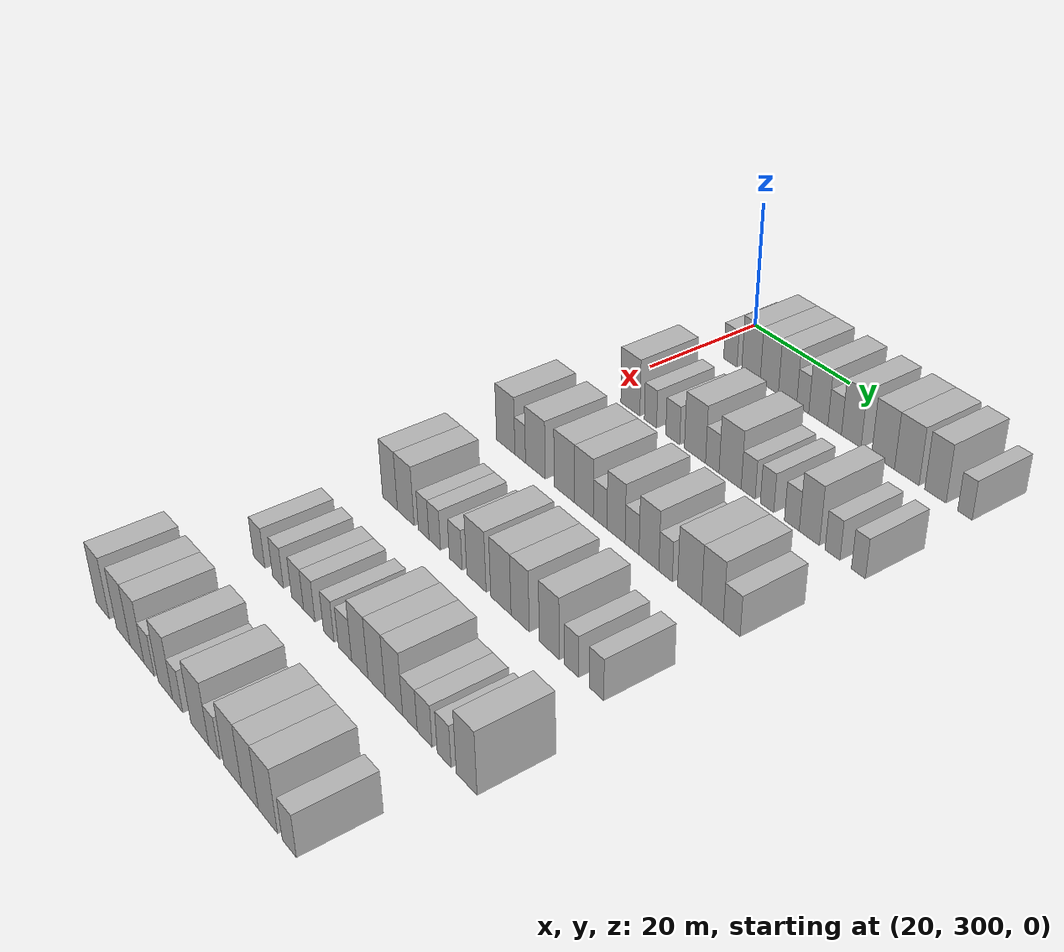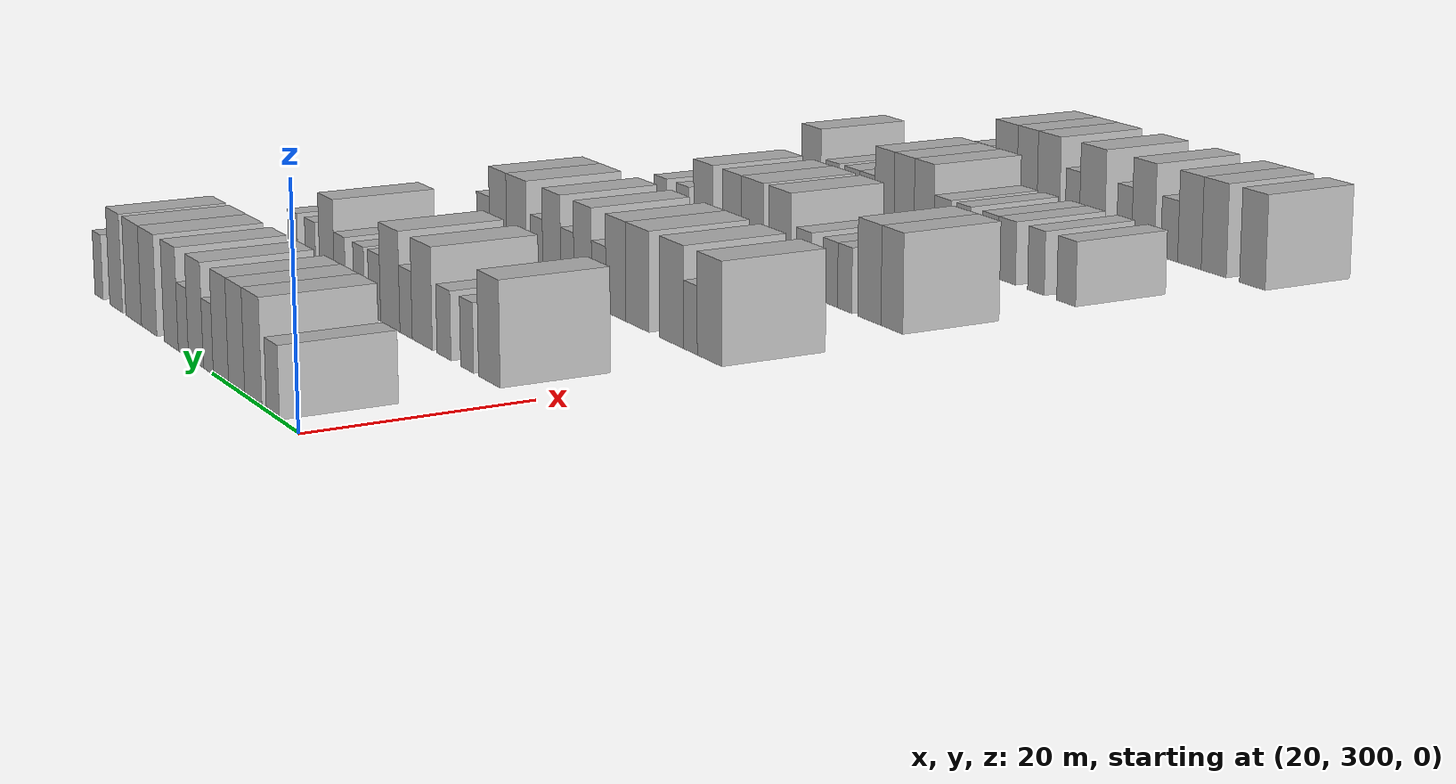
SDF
<sdf version="1.6">
 <world name="default">
  <model name="building_176">
   <static>1</static>
   <pose>25.0000 305.8045 0 0.000000 0.000000 0.000000</pose>
   <link name="link">
    <pose>0 0 3.00 0 0 0</pose>
    <collision name="collision"><geometry><box><size>10.0000 2.9449 6.0000</size></box></geometry></collision>
    <visual name="visual">
     <cast_shadows>0</cast_shadows>
     <geometry><box><size>10.0000 2.9449 6.0000</size></box></geometry>
     <material>
      <script>
       <uri>model://HANNAS_wall/materials/scripts</uri>
       <uri>model://HANNAS_wall/materials/textures</uri>
       <name>vrc/HANNAS_wall</name>
      </script>
     </material>
    </visual>
   </link>
  </model>
  <model name="building_177">
   <static>1</static>
   <pose>25.0000 310.2617 0 0.000000 0.000000 0.000000</pose>
   <link name="link">
    <pose>0 0 4.50 0 0 0</pose>
    <collision name="collision"><geometry><box><size>10.0000 3.9695 9.0000</size></box></geometry></collision>
    <visual name="visual">
     <cast_shadows>0</cast_shadows>
     <geometry><box><size>10.0000 3.9695 9.0000</size></box></geometry>
     <material>
      <script>
       <uri>model://HANNAS_wall/materials/scripts</uri>
       <uri>model://HANNAS_wall/materials/textures</uri>
       <name>vrc/HANNAS_wall</name>
      </script>
     </material>
    </visual>
   </link>
  </model>
  <model name="building_178">
   <static>1</static>
   <pose>25.0000 314.1669 0 0.000000 0.000000 0.000000</pose>
   <link name="link">
    <pose>0 0 4.50 0 0 0</pose>
    <collision name="collision"><geometry><box><size>10.0000 3.8408 9.0000</size></box></geometry></collision>
    <visual name="visual">
     <cast_shadows>0</cast_shadows>
     <geometry><box><size>10.0000 3.8408 9.0000</size></box></geometry>
     <material>
      <script>
       <uri>model://HANNAS_wall/materials/scripts</uri>
       <uri>model://HANNAS_wall/materials/textures</uri>
       <name>vrc/HANNAS_wall</name>
      </script>
     </material>
    </visual>
   </link>
  </model>
  <model name="building_179">
   <static>1</static>
   <pose>25.0000 317.9607 0 0.000000 0.000000 0.000000</pose>
   <link name="link">
    <pose>0 0 4.50 0 0 0</pose>
    <collision name="collision"><geometry><box><size>10.0000 3.7470 9.0000</size></box></geometry></collision>
    <visual name="visual">
     <cast_shadows>0</cast_shadows>
     <geometry><box><size>10.0000 3.7470 9.0000</size></box></geometry>
     <material>
      <script>
       <uri>model://HANNAS_wall/materials/scripts</uri>
       <uri>model://HANNAS_wall/materials/textures</uri>
       <name>vrc/HANNAS_wall</name>
      </script>
     </material>
    </visual>
   </link>
  </model>
  <model name="building_180">
   <static>1</static>
   <pose>25.0000 321.0711 0 0.000000 0.000000 0.000000</pose>
   <link name="link">
    <pose>0 0 3.00 0 0 0</pose>
    <collision name="collision"><geometry><box><size>10.0000 2.4738 6.0000</size></box></geometry></collision>
    <visual name="visual">
     <cast_shadows>0</cast_shadows>
     <geometry><box><size>10.0000 2.4738 6.0000</size></box></geometry>
     <material>
      <script>
       <uri>model://HANNAS_wall/materials/scripts</uri>
       <uri>model://HANNAS_wall/materials/textures</uri>
       <name>vrc/HANNAS_wall</name>
      </script>
     </material>
    </visual>
   </link>
  </model>
  <model name="building_181">
   <static>1</static>
   <pose>25.0000 324.2122 0 0.000000 0.000000 0.000000</pose>
   <link name="link">
    <pose>0 0 4.50 0 0 0</pose>
    <collision name="collision"><geometry><box><size>10.0000 3.8084 9.0000</size></box></geometry></collision>
    <visual name="visual">
     <cast_shadows>0</cast_shadows>
     <geometry><box><size>10.0000 3.8084 9.0000</size></box></geometry>
     <material>
      <script>
       <uri>model://HANNAS_wall/materials/scripts</uri>
       <uri>model://HANNAS_wall/materials/textures</uri>
       <name>vrc/HANNAS_wall</name>
      </script>
     </material>
    </visual>
   </link>
  </model>
  <model name="building_182">
   <static>1</static>
   <pose>25.0000 327.4393 0 0.000000 0.000000 0.000000</pose>
   <link name="link">
    <pose>0 0 3.00 0 0 0</pose>
    <collision name="collision"><geometry><box><size>10.0000 2.6457 6.0000</size></box></geometry></collision>
    <visual name="visual">
     <cast_shadows>0</cast_shadows>
     <geometry><box><size>10.0000 2.6457 6.0000</size></box></geometry>
     <material>
      <script>
       <uri>model://HANNAS_wall/materials/scripts</uri>
       <uri>model://HANNAS_wall/materials/textures</uri>
       <name>vrc/HANNAS_wall</name>
      </script>
     </material>
    </visual>
   </link>
  </model>
  <model name="building_183">
   <static>1</static>
   <pose>25.0000 330.6373 0 0.000000 0.000000 0.000000</pose>
   <link name="link">
    <pose>0 0 4.50 0 0 0</pose>
    <collision name="collision"><geometry><box><size>10.0000 3.7503 9.0000</size></box></geometry></collision>
    <visual name="visual">
     <cast_shadows>0</cast_shadows>
     <geometry><box><size>10.0000 3.7503 9.0000</size></box></geometry>
     <material>
      <script>
       <uri>model://HANNAS_wall/materials/scripts</uri>
       <uri>model://HANNAS_wall/materials/textures</uri>
       <name>vrc/HANNAS_wall</name>
      </script>
     </material>
    </visual>
   </link>
  </model>
  <model name="building_184">
   <static>1</static>
   <pose>25.0000 336.6296 0 0.000000 0.000000 0.000000</pose>
   <link name="link">
    <pose>0 0 4.50 0 0 0</pose>
    <collision name="collision"><geometry><box><size>10.0000 4.2343 9.0000</size></box></geometry></collision>
    <visual name="visual">
     <cast_shadows>0</cast_shadows>
     <geometry><box><size>10.0000 4.2343 9.0000</size></box></geometry>
     <material>
      <script>
       <uri>model://HANNAS_wall/materials/scripts</uri>
       <uri>model://HANNAS_wall/materials/textures</uri>
       <name>vrc/HANNAS_wall</name>
      </script>
     </material>
    </visual>
   </link>
  </model>
  <model name="building_185">
   <static>1</static>
   <pose>25.0000 340.9697 0 0.000000 0.000000 0.000000</pose>
   <link name="link">
    <pose>0 0 4.50 0 0 0</pose>
    <collision name="collision"><geometry><box><size>10.0000 4.4460 9.0000</size></box></geometry></collision>
    <visual name="visual">
     <cast_shadows>0</cast_shadows>
     <geometry><box><size>10.0000 4.4460 9.0000</size></box></geometry>
     <material>
      <script>
       <uri>model://HANNAS_wall/materials/scripts</uri>
       <uri>model://HANNAS_wall/materials/textures</uri>
       <name>vrc/HANNAS_wall</name>
      </script>
     </material>
    </visual>
   </link>
  </model>
  <model name="building_186">
   <static>1</static>
   <pose>25.0000 346.0613 0 0.000000 0.000000 0.000000</pose>
   <link name="link">
    <pose>0 0 4.50 0 0 0</pose>
    <collision name="collision"><geometry><box><size>10.0000 3.7371 9.0000</size></box></geometry></collision>
    <visual name="visual">
     <cast_shadows>0</cast_shadows>
     <geometry><box><size>10.0000 3.7371 9.0000</size></box></geometry>
     <material>
      <script>
       <uri>model://HANNAS_wall/materials/scripts</uri>
       <uri>model://HANNAS_wall/materials/textures</uri>
       <name>vrc/HANNAS_wall</name>
      </script>
     </material>
    </visual>
   </link>
  </model>
  <model name="building_187">
   <static>1</static>
   <pose>25.0000 351.1634 0 0.000000 0.000000 0.000000</pose>
   <link name="link">
    <pose>0 0 3.00 0 0 0</pose>
    <collision name="collision"><geometry><box><size>10.0000 2.4670 6.0000</size></box></geometry></collision>
    <visual name="visual">
     <cast_shadows>0</cast_shadows>
     <geometry><box><size>10.0000 2.4670 6.0000</size></box></geometry>
     <material>
      <script>
       <uri>model://HANNAS_wall/materials/scripts</uri>
       <uri>model://HANNAS_wall/materials/textures</uri>
       <name>vrc/HANNAS_wall</name>
      </script>
     </material>
    </visual>
   </link>
  </model>
  <model name="building_346">
   <static>1</static>
   <pose>44.0000 306.8379 0 0.000000 0.000000 0.000000</pose>
   <link name="link">
    <pose>0 0 4.50 0 0 0</pose>
    <collision name="collision"><geometry><box><size>10.0000 4.2614 9.0000</size></box></geometry></collision>
    <visual name="visual">
     <cast_shadows>0</cast_shadows>
     <geometry><box><size>10.0000 4.2614 9.0000</size></box></geometry>
     <material>
      <script>
       <uri>model://HANNAS_wall/materials/scripts</uri>
       <uri>model://HANNAS_wall/materials/textures</uri>
       <name>vrc/HANNAS_wall</name>
      </script>
     </material>
    </visual>
   </link>
  </model>
  <model name="building_347">
   <static>1</static>
   <pose>44.0000 311.2999 0 0.000000 0.000000 0.000000</pose>
   <link name="link">
    <pose>0 0 3.00 0 0 0</pose>
    <collision name="collision"><geometry><box><size>10.0000 2.6626 6.0000</size></box></geometry></collision>
    <visual name="visual">
     <cast_shadows>0</cast_shadows>
     <geometry><box><size>10.0000 2.6626 6.0000</size></box></geometry>
     <material>
      <script>
       <uri>model://HANNAS_wall/materials/scripts</uri>
       <uri>model://HANNAS_wall/materials/textures</uri>
       <name>vrc/HANNAS_wall</name>
      </script>
     </material>
    </visual>
   </link>
  </model>
  <model name="building_348">
   <static>1</static>
   <pose>44.0000 316.1091 0 0.000000 0.000000 0.000000</pose>
   <link name="link">
    <pose>0 0 3.00 0 0 0</pose>
    <collision name="collision"><geometry><box><size>10.0000 2.9559 6.0000</size></box></geometry></collision>
    <visual name="visual">
     <cast_shadows>0</cast_shadows>
     <geometry><box><size>10.0000 2.9559 6.0000</size></box></geometry>
     <material>
      <script>
       <uri>model://HANNAS_wall/materials/scripts</uri>
       <uri>model://HANNAS_wall/materials/textures</uri>
       <name>vrc/HANNAS_wall</name>
      </script>
     </material>
    </visual>
   </link>
  </model>
  <model name="building_349">
   <static>1</static>
   <pose>44.0000 320.7773 0 0.000000 0.000000 0.000000</pose>
   <link name="link">
    <pose>0 0 4.50 0 0 0</pose>
    <collision name="collision"><geometry><box><size>10.0000 4.3804 9.0000</size></box></geometry></collision>
    <visual name="visual">
     <cast_shadows>0</cast_shadows>
     <geometry><box><size>10.0000 4.3804 9.0000</size></box></geometry>
     <material>
      <script>
       <uri>model://HANNAS_wall/materials/scripts</uri>
       <uri>model://HANNAS_wall/materials/textures</uri>
       <name>vrc/HANNAS_wall</name>
      </script>
     </material>
    </visual>
   </link>
  </model>
  <model name="building_350">
   <static>1</static>
   <pose>44.0000 324.3385 0 0.000000 0.000000 0.000000</pose>
   <link name="link">
    <pose>0 0 3.00 0 0 0</pose>
    <collision name="collision"><geometry><box><size>10.0000 2.7422 6.0000</size></box></geometry></collision>
    <visual name="visual">
     <cast_shadows>0</cast_shadows>
     <geometry><box><size>10.0000 2.7422 6.0000</size></box></geometry>
     <material>
      <script>
       <uri>model://HANNAS_wall/materials/scripts</uri>
       <uri>model://HANNAS_wall/materials/textures</uri>
       <name>vrc/HANNAS_wall</name>
      </script>
     </material>
    </visual>
   </link>
  </model>
  <model name="building_351">
   <static>1</static>
   <pose>44.0000 327.9108 0 0.000000 0.000000 0.000000</pose>
   <link name="link">
    <pose>0 0 4.50 0 0 0</pose>
    <collision name="collision"><geometry><box><size>10.0000 4.4023 9.0000</size></box></geometry></collision>
    <visual name="visual">
     <cast_shadows>0</cast_shadows>
     <geometry><box><size>10.0000 4.4023 9.0000</size></box></geometry>
     <material>
      <script>
       <uri>model://HANNAS_wall/materials/scripts</uri>
       <uri>model://HANNAS_wall/materials/textures</uri>
       <name>vrc/HANNAS_wall</name>
      </script>
     </material>
    </visual>
   </link>
  </model>
  <model name="building_352">
   <static>1</static>
   <pose>44.0000 331.4718 0 0.000000 0.000000 0.000000</pose>
   <link name="link">
    <pose>0 0 3.00 0 0 0</pose>
    <collision name="collision"><geometry><box><size>10.0000 2.7199 6.0000</size></box></geometry></collision>
    <visual name="visual">
     <cast_shadows>0</cast_shadows>
     <geometry><box><size>10.0000 2.7199 6.0000</size></box></geometry>
     <material>
      <script>
       <uri>model://HANNAS_wall/materials/scripts</uri>
       <uri>model://HANNAS_wall/materials/textures</uri>
       <name>vrc/HANNAS_wall</name>
      </script>
     </material>
    </visual>
   </link>
  </model>
  <model name="building_353">
   <static>1</static>
   <pose>44.0000 335.1109 0 0.000000 0.000000 0.000000</pose>
   <link name="link">
    <pose>0 0 3.00 0 0 0</pose>
    <collision name="collision"><geometry><box><size>10.0000 2.5582 6.0000</size></box></geometry></collision>
    <visual name="visual">
     <cast_shadows>0</cast_shadows>
     <geometry><box><size>10.0000 2.5582 6.0000</size></box></geometry>
     <material>
      <script>
       <uri>model://HANNAS_wall/materials/scripts</uri>
       <uri>model://HANNAS_wall/materials/textures</uri>
       <name>vrc/HANNAS_wall</name>
      </script>
     </material>
    </visual>
   </link>
  </model>
  <model name="building_354">
   <static>1</static>
   <pose>44.0000 339.7574 0 0.000000 0.000000 0.000000</pose>
   <link name="link">
    <pose>0 0 3.00 0 0 0</pose>
    <collision name="collision"><geometry><box><size>10.0000 2.7348 6.0000</size></box></geometry></collision>
    <visual name="visual">
     <cast_shadows>0</cast_shadows>
     <geometry><box><size>10.0000 2.7348 6.0000</size></box></geometry>
     <material>
      <script>
       <uri>model://HANNAS_wall/materials/scripts</uri>
       <uri>model://HANNAS_wall/materials/textures</uri>
       <name>vrc/HANNAS_wall</name>
      </script>
     </material>
    </visual>
   </link>
  </model>
  <model name="building_355">
   <static>1</static>
   <pose>44.0000 342.9606 0 0.000000 0.000000 0.000000</pose>
   <link name="link">
    <pose>0 0 4.50 0 0 0</pose>
    <collision name="collision"><geometry><box><size>10.0000 3.6716 9.0000</size></box></geometry></collision>
    <visual name="visual">
     <cast_shadows>0</cast_shadows>
     <geometry><box><size>10.0000 3.6716 9.0000</size></box></geometry>
     <material>
      <script>
       <uri>model://HANNAS_wall/materials/scripts</uri>
       <uri>model://HANNAS_wall/materials/textures</uri>
       <name>vrc/HANNAS_wall</name>
      </script>
     </material>
    </visual>
   </link>
  </model>
  <model name="building_356">
   <static>1</static>
   <pose>44.0000 347.1138 0 0.000000 0.000000 0.000000</pose>
   <link name="link">
    <pose>0 0 3.00 0 0 0</pose>
    <collision name="collision"><geometry><box><size>10.0000 2.6347 6.0000</size></box></geometry></collision>
    <visual name="visual">
     <cast_shadows>0</cast_shadows>
     <geometry><box><size>10.0000 2.6347 6.0000</size></box></geometry>
     <material>
      <script>
       <uri>model://HANNAS_wall/materials/scripts</uri>
       <uri>model://HANNAS_wall/materials/textures</uri>
       <name>vrc/HANNAS_wall</name>
      </script>
     </material>
    </visual>
   </link>
  </model>
  <model name="building_357">
   <static>1</static>
   <pose>44.0000 351.6318 0 0.000000 0.000000 0.000000</pose>
   <link name="link">
    <pose>0 0 3.00 0 0 0</pose>
    <collision name="collision"><geometry><box><size>10.0000 2.4013 6.0000</size></box></geometry></collision>
    <visual name="visual">
     <cast_shadows>0</cast_shadows>
     <geometry><box><size>10.0000 2.4013 6.0000</size></box></geometry>
     <material>
      <script>
       <uri>model://HANNAS_wall/materials/scripts</uri>
       <uri>model://HANNAS_wall/materials/textures</uri>
       <name>vrc/HANNAS_wall</name>
      </script>
     </material>
    </visual>
   </link>
  </model>
  <model name="building_511">
   <static>1</static>
   <pose>63.0000 304.2269 0 0.000000 0.000000 0.000000</pose>
   <link name="link">
    <pose>0 0 4.50 0 0 0</pose>
    <collision name="collision"><geometry><box><size>10.0000 4.3254 9.0000</size></box></geometry></collision>
    <visual name="visual">
     <cast_shadows>0</cast_shadows>
     <geometry><box><size>10.0000 4.3254 9.0000</size></box></geometry>
     <material>
      <script>
       <uri>model://HANNAS_wall/materials/scripts</uri>
       <uri>model://HANNAS_wall/materials/textures</uri>
       <name>vrc/HANNAS_wall</name>
      </script>
     </material>
    </visual>
   </link>
  </model>
  <model name="building_512">
   <static>1</static>
   <pose>63.0000 307.6133 0 0.000000 0.000000 0.000000</pose>
   <link name="link">
    <pose>0 0 3.00 0 0 0</pose>
    <collision name="collision"><geometry><box><size>10.0000 2.4474 6.0000</size></box></geometry></collision>
    <visual name="visual">
     <cast_shadows>0</cast_shadows>
     <geometry><box><size>10.0000 2.4474 6.0000</size></box></geometry>
     <material>
      <script>
       <uri>model://HANNAS_wall/materials/scripts</uri>
       <uri>model://HANNAS_wall/materials/textures</uri>
       <name>vrc/HANNAS_wall</name>
      </script>
     </material>
    </visual>
   </link>
  </model>
  <model name="building_513">
   <static>1</static>
   <pose>63.0000 311.0800 0 0.000000 0.000000 0.000000</pose>
   <link name="link">
    <pose>0 0 4.50 0 0 0</pose>
    <collision name="collision"><geometry><box><size>10.0000 4.4862 9.0000</size></box></geometry></collision>
    <visual name="visual">
     <cast_shadows>0</cast_shadows>
     <geometry><box><size>10.0000 4.4862 9.0000</size></box></geometry>
     <material>
      <script>
       <uri>model://HANNAS_wall/materials/scripts</uri>
       <uri>model://HANNAS_wall/materials/textures</uri>
       <name>vrc/HANNAS_wall</name>
      </script>
     </material>
    </visual>
   </link>
  </model>
  <model name="building_514">
   <static>1</static>
   <pose>63.0000 317.5495 0 0.000000 0.000000 0.000000</pose>
   <link name="link">
    <pose>0 0 4.50 0 0 0</pose>
    <collision name="collision"><geometry><box><size>10.0000 4.4528 9.0000</size></box></geometry></collision>
    <visual name="visual">
     <cast_shadows>0</cast_shadows>
     <geometry><box><size>10.0000 4.4528 9.0000</size></box></geometry>
     <material>
      <script>
       <uri>model://HANNAS_wall/materials/scripts</uri>
       <uri>model://HANNAS_wall/materials/textures</uri>
       <name>vrc/HANNAS_wall</name>
      </script>
     </material>
    </visual>
   </link>
  </model>
  <model name="building_515">
   <static>1</static>
   <pose>63.0000 321.7395 0 0.000000 0.000000 0.000000</pose>
   <link name="link">
    <pose>0 0 4.50 0 0 0</pose>
    <collision name="collision"><geometry><box><size>10.0000 3.9272 9.0000</size></box></geometry></collision>
    <visual name="visual">
     <cast_shadows>0</cast_shadows>
     <geometry><box><size>10.0000 3.9272 9.0000</size></box></geometry>
     <material>
      <script>
       <uri>model://HANNAS_wall/materials/scripts</uri>
       <uri>model://HANNAS_wall/materials/textures</uri>
       <name>vrc/HANNAS_wall</name>
      </script>
     </material>
    </visual>
   </link>
  </model>
  <model name="building_516">
   <static>1</static>
   <pose>63.0000 325.1432 0 0.000000 0.000000 0.000000</pose>
   <link name="link">
    <pose>0 0 3.00 0 0 0</pose>
    <collision name="collision"><geometry><box><size>10.0000 2.8802 6.0000</size></box></geometry></collision>
    <visual name="visual">
     <cast_shadows>0</cast_shadows>
     <geometry><box><size>10.0000 2.8802 6.0000</size></box></geometry>
     <material>
      <script>
       <uri>model://HANNAS_wall/materials/scripts</uri>
       <uri>model://HANNAS_wall/materials/textures</uri>
       <name>vrc/HANNAS_wall</name>
      </script>
     </material>
    </visual>
   </link>
  </model>
  <model name="building_517">
   <static>1</static>
   <pose>63.0000 328.4225 0 0.000000 0.000000 0.000000</pose>
   <link name="link">
    <pose>0 0 4.50 0 0 0</pose>
    <collision name="collision"><geometry><box><size>10.0000 3.6784 9.0000</size></box></geometry></collision>
    <visual name="visual">
     <cast_shadows>0</cast_shadows>
     <geometry><box><size>10.0000 3.6784 9.0000</size></box></geometry>
     <material>
      <script>
       <uri>model://HANNAS_wall/materials/scripts</uri>
       <uri>model://HANNAS_wall/materials/textures</uri>
       <name>vrc/HANNAS_wall</name>
      </script>
     </material>
    </visual>
   </link>
  </model>
  <model name="building_518">
   <static>1</static>
   <pose>63.0000 331.6562 0 0.000000 0.000000 0.000000</pose>
   <link name="link">
    <pose>0 0 3.00 0 0 0</pose>
    <collision name="collision"><geometry><box><size>10.0000 2.7889 6.0000</size></box></geometry></collision>
    <visual name="visual">
     <cast_shadows>0</cast_shadows>
     <geometry><box><size>10.0000 2.7889 6.0000</size></box></geometry>
     <material>
      <script>
       <uri>model://HANNAS_wall/materials/scripts</uri>
       <uri>model://HANNAS_wall/materials/textures</uri>
       <name>vrc/HANNAS_wall</name>
      </script>
     </material>
    </visual>
   </link>
  </model>
  <model name="building_519">
   <static>1</static>
   <pose>63.0000 334.9862 0 0.000000 0.000000 0.000000</pose>
   <link name="link">
    <pose>0 0 4.50 0 0 0</pose>
    <collision name="collision"><geometry><box><size>10.0000 3.8711 9.0000</size></box></geometry></collision>
    <visual name="visual">
     <cast_shadows>0</cast_shadows>
     <geometry><box><size>10.0000 3.8711 9.0000</size></box></geometry>
     <material>
      <script>
       <uri>model://HANNAS_wall/materials/scripts</uri>
       <uri>model://HANNAS_wall/materials/textures</uri>
       <name>vrc/HANNAS_wall</name>
      </script>
     </material>
    </visual>
   </link>
  </model>
  <model name="building_520">
   <static>1</static>
   <pose>63.0000 338.2127 0 0.000000 0.000000 0.000000</pose>
   <link name="link">
    <pose>0 0 3.00 0 0 0</pose>
    <collision name="collision"><geometry><box><size>10.0000 2.5819 6.0000</size></box></geometry></collision>
    <visual name="visual">
     <cast_shadows>0</cast_shadows>
     <geometry><box><size>10.0000 2.5819 6.0000</size></box></geometry>
     <material>
      <script>
       <uri>model://HANNAS_wall/materials/scripts</uri>
       <uri>model://HANNAS_wall/materials/textures</uri>
       <name>vrc/HANNAS_wall</name>
      </script>
     </material>
    </visual>
   </link>
  </model>
  <model name="building_521">
   <static>1</static>
   <pose>63.0000 342.7180 0 0.000000 0.000000 0.000000</pose>
   <link name="link">
    <pose>0 0 4.50 0 0 0</pose>
    <collision name="collision"><geometry><box><size>10.0000 4.4287 9.0000</size></box></geometry></collision>
    <visual name="visual">
     <cast_shadows>0</cast_shadows>
     <geometry><box><size>10.0000 4.4287 9.0000</size></box></geometry>
     <material>
      <script>
       <uri>model://HANNAS_wall/materials/scripts</uri>
       <uri>model://HANNAS_wall/materials/textures</uri>
       <name>vrc/HANNAS_wall</name>
      </script>
     </material>
    </visual>
   </link>
  </model>
  <model name="building_522">
   <static>1</static>
   <pose>63.0000 346.9129 0 0.000000 0.000000 0.000000</pose>
   <link name="link">
    <pose>0 0 4.50 0 0 0</pose>
    <collision name="collision"><geometry><box><size>10.0000 3.9609 9.0000</size></box></geometry></collision>
    <visual name="visual">
     <cast_shadows>0</cast_shadows>
     <geometry><box><size>10.0000 3.9609 9.0000</size></box></geometry>
     <material>
      <script>
       <uri>model://HANNAS_wall/materials/scripts</uri>
       <uri>model://HANNAS_wall/materials/textures</uri>
       <name>vrc/HANNAS_wall</name>
      </script>
     </material>
    </visual>
   </link>
  </model>
  <model name="building_523">
   <static>1</static>
   <pose>63.0000 350.3883 0 0.000000 0.000000 0.000000</pose>
   <link name="link">
    <pose>0 0 3.00 0 0 0</pose>
    <collision name="collision"><geometry><box><size>10.0000 2.9901 6.0000</size></box></geometry></collision>
    <visual name="visual">
     <cast_shadows>0</cast_shadows>
     <geometry><box><size>10.0000 2.9901 6.0000</size></box></geometry>
     <material>
      <script>
       <uri>model://HANNAS_wall/materials/scripts</uri>
       <uri>model://HANNAS_wall/materials/textures</uri>
       <name>vrc/HANNAS_wall</name>
      </script>
     </material>
    </visual>
   </link>
  </model>
  <model name="building_681">
   <static>1</static>
   <pose>82.0000 305.9392 0 0.000000 0.000000 0.000000</pose>
   <link name="link">
    <pose>0 0 4.50 0 0 0</pose>
    <collision name="collision"><geometry><box><size>10.0000 3.6217 9.0000</size></box></geometry></collision>
    <visual name="visual">
     <cast_shadows>0</cast_shadows>
     <geometry><box><size>10.0000 3.6217 9.0000</size></box></geometry>
     <material>
      <script>
       <uri>model://HANNAS_wall/materials/scripts</uri>
       <uri>model://HANNAS_wall/materials/textures</uri>
       <name>vrc/HANNAS_wall</name>
      </script>
     </material>
    </visual>
   </link>
  </model>
  <model name="building_682">
   <static>1</static>
   <pose>82.0000 309.7360 0 0.000000 0.000000 0.000000</pose>
   <link name="link">
    <pose>0 0 4.50 0 0 0</pose>
    <collision name="collision"><geometry><box><size>10.0000 3.9719 9.0000</size></box></geometry></collision>
    <visual name="visual">
     <cast_shadows>0</cast_shadows>
     <geometry><box><size>10.0000 3.9719 9.0000</size></box></geometry>
     <material>
      <script>
       <uri>model://HANNAS_wall/materials/scripts</uri>
       <uri>model://HANNAS_wall/materials/textures</uri>
       <name>vrc/HANNAS_wall</name>
      </script>
     </material>
    </visual>
   </link>
  </model>
  <model name="building_683">
   <static>1</static>
   <pose>82.0000 313.9647 0 0.000000 0.000000 0.000000</pose>
   <link name="link">
    <pose>0 0 3.00 0 0 0</pose>
    <collision name="collision"><geometry><box><size>10.0000 2.4854 6.0000</size></box></geometry></collision>
    <visual name="visual">
     <cast_shadows>0</cast_shadows>
     <geometry><box><size>10.0000 2.4854 6.0000</size></box></geometry>
     <material>
      <script>
       <uri>model://HANNAS_wall/materials/scripts</uri>
       <uri>model://HANNAS_wall/materials/textures</uri>
       <name>vrc/HANNAS_wall</name>
      </script>
     </material>
    </visual>
   </link>
  </model>
  <model name="building_684">
   <static>1</static>
   <pose>82.0000 316.5298 0 0.000000 0.000000 0.000000</pose>
   <link name="link">
    <pose>0 0 3.00 0 0 0</pose>
    <collision name="collision"><geometry><box><size>10.0000 2.6448 6.0000</size></box></geometry></collision>
    <visual name="visual">
     <cast_shadows>0</cast_shadows>
     <geometry><box><size>10.0000 2.6448 6.0000</size></box></geometry>
     <material>
      <script>
       <uri>model://HANNAS_wall/materials/scripts</uri>
       <uri>model://HANNAS_wall/materials/textures</uri>
       <name>vrc/HANNAS_wall</name>
      </script>
     </material>
    </visual>
   </link>
  </model>
  <model name="building_685">
   <static>1</static>
   <pose>82.0000 321.2716 0 0.000000 0.000000 0.000000</pose>
   <link name="link">
    <pose>0 0 3.00 0 0 0</pose>
    <collision name="collision"><geometry><box><size>10.0000 2.8388 6.0000</size></box></geometry></collision>
    <visual name="visual">
     <cast_shadows>0</cast_shadows>
     <geometry><box><size>10.0000 2.8388 6.0000</size></box></geometry>
     <material>
      <script>
       <uri>model://HANNAS_wall/materials/scripts</uri>
       <uri>model://HANNAS_wall/materials/textures</uri>
       <name>vrc/HANNAS_wall</name>
      </script>
     </material>
    </visual>
   </link>
  </model>
  <model name="building_686">
   <static>1</static>
   <pose>82.0000 325.7836 0 0.000000 0.000000 0.000000</pose>
   <link name="link">
    <pose>0 0 4.50 0 0 0</pose>
    <collision name="collision"><geometry><box><size>10.0000 4.1852 9.0000</size></box></geometry></collision>
    <visual name="visual">
     <cast_shadows>0</cast_shadows>
     <geometry><box><size>10.0000 4.1852 9.0000</size></box></geometry>
     <material>
      <script>
       <uri>model://HANNAS_wall/materials/scripts</uri>
       <uri>model://HANNAS_wall/materials/textures</uri>
       <name>vrc/HANNAS_wall</name>
      </script>
     </material>
    </visual>
   </link>
  </model>
  <model name="building_687">
   <static>1</static>
   <pose>82.0000 330.9947 0 0.000000 0.000000 0.000000</pose>
   <link name="link">
    <pose>0 0 4.50 0 0 0</pose>
    <collision name="collision"><geometry><box><size>10.0000 4.2369 9.0000</size></box></geometry></collision>
    <visual name="visual">
     <cast_shadows>0</cast_shadows>
     <geometry><box><size>10.0000 4.2369 9.0000</size></box></geometry>
     <material>
      <script>
       <uri>model://HANNAS_wall/materials/scripts</uri>
       <uri>model://HANNAS_wall/materials/textures</uri>
       <name>vrc/HANNAS_wall</name>
      </script>
     </material>
    </visual>
   </link>
  </model>
  <model name="building_688">
   <static>1</static>
   <pose>82.0000 334.9666 0 0.000000 0.000000 0.000000</pose>
   <link name="link">
    <pose>0 0 4.50 0 0 0</pose>
    <collision name="collision"><geometry><box><size>10.0000 3.7068 9.0000</size></box></geometry></collision>
    <visual name="visual">
     <cast_shadows>0</cast_shadows>
     <geometry><box><size>10.0000 3.7068 9.0000</size></box></geometry>
     <material>
      <script>
       <uri>model://HANNAS_wall/materials/scripts</uri>
       <uri>model://HANNAS_wall/materials/textures</uri>
       <name>vrc/HANNAS_wall</name>
      </script>
     </material>
    </visual>
   </link>
  </model>
  <model name="building_689">
   <static>1</static>
   <pose>82.0000 340.7694 0 0.000000 0.000000 0.000000</pose>
   <link name="link">
    <pose>0 0 4.50 0 0 0</pose>
    <collision name="collision"><geometry><box><size>10.0000 3.8989 9.0000</size></box></geometry></collision>
    <visual name="visual">
     <cast_shadows>0</cast_shadows>
     <geometry><box><size>10.0000 3.8989 9.0000</size></box></geometry>
     <material>
      <script>
       <uri>model://HANNAS_wall/materials/scripts</uri>
       <uri>model://HANNAS_wall/materials/textures</uri>
       <name>vrc/HANNAS_wall</name>
      </script>
     </material>
    </visual>
   </link>
  </model>
  <model name="building_690">
   <static>1</static>
   <pose>82.0000 345.0511 0 0.000000 0.000000 0.000000</pose>
   <link name="link">
    <pose>0 0 3.00 0 0 0</pose>
    <collision name="collision"><geometry><box><size>10.0000 2.6644 6.0000</size></box></geometry></collision>
    <visual name="visual">
     <cast_shadows>0</cast_shadows>
     <geometry><box><size>10.0000 2.6644 6.0000</size></box></geometry>
     <material>
      <script>
       <uri>model://HANNAS_wall/materials/scripts</uri>
       <uri>model://HANNAS_wall/materials/textures</uri>
       <name>vrc/HANNAS_wall</name>
      </script>
     </material>
    </visual>
   </link>
  </model>
  <model name="building_691">
   <static>1</static>
   <pose>82.0000 349.7181 0 0.000000 0.000000 0.000000</pose>
   <link name="link">
    <pose>0 0 3.00 0 0 0</pose>
    <collision name="collision"><geometry><box><size>10.0000 2.6695 6.0000</size></box></geometry></collision>
    <visual name="visual">
     <cast_shadows>0</cast_shadows>
     <geometry><box><size>10.0000 2.6695 6.0000</size></box></geometry>
     <material>
      <script>
       <uri>model://HANNAS_wall/materials/scripts</uri>
       <uri>model://HANNAS_wall/materials/textures</uri>
       <name>vrc/HANNAS_wall</name>
      </script>
     </material>
    </visual>
   </link>
  </model>
  <model name="building_847">
   <static>1</static>
   <pose>101.0000 306.7326 0 0.000000 0.000000 0.000000</pose>
   <link name="link">
    <pose>0 0 3.00 0 0 0</pose>
    <collision name="collision"><geometry><box><size>10.0000 2.9616 6.0000</size></box></geometry></collision>
    <visual name="visual">
     <cast_shadows>0</cast_shadows>
     <geometry><box><size>10.0000 2.9616 6.0000</size></box></geometry>
     <material>
      <script>
       <uri>model://HANNAS_wall/materials/scripts</uri>
       <uri>model://HANNAS_wall/materials/textures</uri>
       <name>vrc/HANNAS_wall</name>
      </script>
     </material>
    </visual>
   </link>
  </model>
  <model name="building_848">
   <static>1</static>
   <pose>101.0000 311.5603 0 0.000000 0.000000 0.000000</pose>
   <link name="link">
    <pose>0 0 3.00 0 0 0</pose>
    <collision name="collision"><geometry><box><size>10.0000 2.6937 6.0000</size></box></geometry></collision>
    <visual name="visual">
     <cast_shadows>0</cast_shadows>
     <geometry><box><size>10.0000 2.6937 6.0000</size></box></geometry>
     <material>
      <script>
       <uri>model://HANNAS_wall/materials/scripts</uri>
       <uri>model://HANNAS_wall/materials/textures</uri>
       <name>vrc/HANNAS_wall</name>
      </script>
     </material>
    </visual>
   </link>
  </model>
  <model name="building_849">
   <static>1</static>
   <pose>101.0000 316.3745 0 0.000000 0.000000 0.000000</pose>
   <link name="link">
    <pose>0 0 3.00 0 0 0</pose>
    <collision name="collision"><geometry><box><size>10.0000 2.9347 6.0000</size></box></geometry></collision>
    <visual name="visual">
     <cast_shadows>0</cast_shadows>
     <geometry><box><size>10.0000 2.9347 6.0000</size></box></geometry>
     <material>
      <script>
       <uri>model://HANNAS_wall/materials/scripts</uri>
       <uri>model://HANNAS_wall/materials/textures</uri>
       <name>vrc/HANNAS_wall</name>
      </script>
     </material>
    </visual>
   </link>
  </model>
  <model name="building_850">
   <static>1</static>
   <pose>101.0000 319.2061 0 0.000000 0.000000 0.000000</pose>
   <link name="link">
    <pose>0 0 3.00 0 0 0</pose>
    <collision name="collision"><geometry><box><size>10.0000 2.7284 6.0000</size></box></geometry></collision>
    <visual name="visual">
     <cast_shadows>0</cast_shadows>
     <geometry><box><size>10.0000 2.7284 6.0000</size></box></geometry>
     <material>
      <script>
       <uri>model://HANNAS_wall/materials/scripts</uri>
       <uri>model://HANNAS_wall/materials/textures</uri>
       <name>vrc/HANNAS_wall</name>
      </script>
     </material>
    </visual>
   </link>
  </model>
  <model name="building_851">
   <static>1</static>
   <pose>101.0000 323.7910 0 0.000000 0.000000 0.000000</pose>
   <link name="link">
    <pose>0 0 3.00 0 0 0</pose>
    <collision name="collision"><geometry><box><size>10.0000 2.4414 6.0000</size></box></geometry></collision>
    <visual name="visual">
     <cast_shadows>0</cast_shadows>
     <geometry><box><size>10.0000 2.4414 6.0000</size></box></geometry>
     <material>
      <script>
       <uri>model://HANNAS_wall/materials/scripts</uri>
       <uri>model://HANNAS_wall/materials/textures</uri>
       <name>vrc/HANNAS_wall</name>
      </script>
     </material>
    </visual>
   </link>
  </model>
  <model name="building_852">
   <static>1</static>
   <pose>101.0000 327.5108 0 0.000000 0.000000 0.000000</pose>
   <link name="link">
    <pose>0 0 3.00 0 0 0</pose>
    <collision name="collision"><geometry><box><size>10.0000 2.9983 6.0000</size></box></geometry></collision>
    <visual name="visual">
     <cast_shadows>0</cast_shadows>
     <geometry><box><size>10.0000 2.9983 6.0000</size></box></geometry>
     <material>
      <script>
       <uri>model://HANNAS_wall/materials/scripts</uri>
       <uri>model://HANNAS_wall/materials/textures</uri>
       <name>vrc/HANNAS_wall</name>
      </script>
     </material>
    </visual>
   </link>
  </model>
  <model name="building_853">
   <static>1</static>
   <pose>101.0000 330.8220 0 0.000000 0.000000 0.000000</pose>
   <link name="link">
    <pose>0 0 4.50 0 0 0</pose>
    <collision name="collision"><geometry><box><size>10.0000 3.6240 9.0000</size></box></geometry></collision>
    <visual name="visual">
     <cast_shadows>0</cast_shadows>
     <geometry><box><size>10.0000 3.6240 9.0000</size></box></geometry>
     <material>
      <script>
       <uri>model://HANNAS_wall/materials/scripts</uri>
       <uri>model://HANNAS_wall/materials/textures</uri>
       <name>vrc/HANNAS_wall</name>
      </script>
     </material>
    </visual>
   </link>
  </model>
  <model name="building_854">
   <static>1</static>
   <pose>101.0000 334.4853 0 0.000000 0.000000 0.000000</pose>
   <link name="link">
    <pose>0 0 4.50 0 0 0</pose>
    <collision name="collision"><geometry><box><size>10.0000 3.7025 9.0000</size></box></geometry></collision>
    <visual name="visual">
     <cast_shadows>0</cast_shadows>
     <geometry><box><size>10.0000 3.7025 9.0000</size></box></geometry>
     <material>
      <script>
       <uri>model://HANNAS_wall/materials/scripts</uri>
       <uri>model://HANNAS_wall/materials/textures</uri>
       <name>vrc/HANNAS_wall</name>
      </script>
     </material>
    </visual>
   </link>
  </model>
  <model name="building_855">
   <static>1</static>
   <pose>101.0000 338.1535 0 0.000000 0.000000 0.000000</pose>
   <link name="link">
    <pose>0 0 4.50 0 0 0</pose>
    <collision name="collision"><geometry><box><size>10.0000 3.6337 9.0000</size></box></geometry></collision>
    <visual name="visual">
     <cast_shadows>0</cast_shadows>
     <geometry><box><size>10.0000 3.6337 9.0000</size></box></geometry>
     <material>
      <script>
       <uri>model://HANNAS_wall/materials/scripts</uri>
       <uri>model://HANNAS_wall/materials/textures</uri>
       <name>vrc/HANNAS_wall</name>
      </script>
     </material>
    </visual>
   </link>
  </model>
  <model name="building_856">
   <static>1</static>
   <pose>101.0000 341.4624 0 0.000000 0.000000 0.000000</pose>
   <link name="link">
    <pose>0 0 3.00 0 0 0</pose>
    <collision name="collision"><geometry><box><size>10.0000 2.9841 6.0000</size></box></geometry></collision>
    <visual name="visual">
     <cast_shadows>0</cast_shadows>
     <geometry><box><size>10.0000 2.9841 6.0000</size></box></geometry>
     <material>
      <script>
       <uri>model://HANNAS_wall/materials/scripts</uri>
       <uri>model://HANNAS_wall/materials/textures</uri>
       <name>vrc/HANNAS_wall</name>
      </script>
     </material>
    </visual>
   </link>
  </model>
  <model name="building_857">
   <static>1</static>
   <pose>101.0000 344.4494 0 0.000000 0.000000 0.000000</pose>
   <link name="link">
    <pose>0 0 3.00 0 0 0</pose>
    <collision name="collision"><geometry><box><size>10.0000 2.9900 6.0000</size></box></geometry></collision>
    <visual name="visual">
     <cast_shadows>0</cast_shadows>
     <geometry><box><size>10.0000 2.9900 6.0000</size></box></geometry>
     <material>
      <script>
       <uri>model://HANNAS_wall/materials/scripts</uri>
       <uri>model://HANNAS_wall/materials/textures</uri>
       <name>vrc/HANNAS_wall</name>
      </script>
     </material>
    </visual>
   </link>
  </model>
  <model name="building_858">
   <static>1</static>
   <pose>101.0000 348.2913 0 0.000000 0.000000 0.000000</pose>
   <link name="link">
    <pose>0 0 3.00 0 0 0</pose>
    <collision name="collision"><geometry><box><size>10.0000 2.6939 6.0000</size></box></geometry></collision>
    <visual name="visual">
     <cast_shadows>0</cast_shadows>
     <geometry><box><size>10.0000 2.6939 6.0000</size></box></geometry>
     <material>
      <script>
       <uri>model://HANNAS_wall/materials/scripts</uri>
       <uri>model://HANNAS_wall/materials/textures</uri>
       <name>vrc/HANNAS_wall</name>
      </script>
     </material>
    </visual>
   </link>
  </model>
  <model name="building_859">
   <static>1</static>
   <pose>101.0000 352.5906 0 0.000000 0.000000 0.000000</pose>
   <link name="link">
    <pose>0 0 4.50 0 0 0</pose>
    <collision name="collision"><geometry><box><size>10.0000 3.9046 9.0000</size></box></geometry></collision>
    <visual name="visual">
     <cast_shadows>0</cast_shadows>
     <geometry><box><size>10.0000 3.9046 9.0000</size></box></geometry>
     <material>
      <script>
       <uri>model://HANNAS_wall/materials/scripts</uri>
       <uri>model://HANNAS_wall/materials/textures</uri>
       <name>vrc/HANNAS_wall</name>
      </script>
     </material>
    </visual>
   </link>
  </model>
  <model name="building_1012">
   <static>1</static>
   <pose>120.0000 304.0080 0 0.000000 0.000000 0.000000</pose>
   <link name="link">
    <pose>0 0 4.50 0 0 0</pose>
    <collision name="collision"><geometry><box><size>10.0000 3.7805 9.0000</size></box></geometry></collision>
    <visual name="visual">
     <cast_shadows>0</cast_shadows>
     <geometry><box><size>10.0000 3.7805 9.0000</size></box></geometry>
     <material>
      <script>
       <uri>model://HANNAS_wall/materials/scripts</uri>
       <uri>model://HANNAS_wall/materials/textures</uri>
       <name>vrc/HANNAS_wall</name>
      </script>
     </material>
    </visual>
   </link>
  </model>
  <model name="building_1013">
   <static>1</static>
   <pose>120.0000 309.8081 0 0.000000 0.000000 0.000000</pose>
   <link name="link">
    <pose>0 0 4.50 0 0 0</pose>
    <collision name="collision"><geometry><box><size>10.0000 3.8199 9.0000</size></box></geometry></collision>
    <visual name="visual">
     <cast_shadows>0</cast_shadows>
     <geometry><box><size>10.0000 3.8199 9.0000</size></box></geometry>
     <material>
      <script>
       <uri>model://HANNAS_wall/materials/scripts</uri>
       <uri>model://HANNAS_wall/materials/textures</uri>
       <name>vrc/HANNAS_wall</name>
      </script>
     </material>
    </visual>
   </link>
  </model>
  <model name="building_1014">
   <static>1</static>
   <pose>120.0000 313.5574 0 0.000000 0.000000 0.000000</pose>
   <link name="link">
    <pose>0 0 4.50 0 0 0</pose>
    <collision name="collision"><geometry><box><size>10.0000 3.6786 9.0000</size></box></geometry></collision>
    <visual name="visual">
     <cast_shadows>0</cast_shadows>
     <geometry><box><size>10.0000 3.6786 9.0000</size></box></geometry>
     <material>
      <script>
       <uri>model://HANNAS_wall/materials/scripts</uri>
       <uri>model://HANNAS_wall/materials/textures</uri>
       <name>vrc/HANNAS_wall</name>
      </script>
     </material>
    </visual>
   </link>
  </model>
  <model name="building_1015">
   <static>1</static>
   <pose>120.0000 316.7477 0 0.000000 0.000000 0.000000</pose>
   <link name="link">
    <pose>0 0 3.00 0 0 0</pose>
    <collision name="collision"><geometry><box><size>10.0000 2.7021 6.0000</size></box></geometry></collision>
    <visual name="visual">
     <cast_shadows>0</cast_shadows>
     <geometry><box><size>10.0000 2.7021 6.0000</size></box></geometry>
     <material>
      <script>
       <uri>model://HANNAS_wall/materials/scripts</uri>
       <uri>model://HANNAS_wall/materials/textures</uri>
       <name>vrc/HANNAS_wall</name>
      </script>
     </material>
    </visual>
   </link>
  </model>
  <model name="building_1016">
   <static>1</static>
   <pose>120.0000 320.9682 0 0.000000 0.000000 0.000000</pose>
   <link name="link">
    <pose>0 0 4.50 0 0 0</pose>
    <collision name="collision"><geometry><box><size>10.0000 3.7389 9.0000</size></box></geometry></collision>
    <visual name="visual">
     <cast_shadows>0</cast_shadows>
     <geometry><box><size>10.0000 3.7389 9.0000</size></box></geometry>
     <material>
      <script>
       <uri>model://HANNAS_wall/materials/scripts</uri>
       <uri>model://HANNAS_wall/materials/textures</uri>
       <name>vrc/HANNAS_wall</name>
      </script>
     </material>
    </visual>
   </link>
  </model>
  <model name="building_1017">
   <static>1</static>
   <pose>120.0000 324.0844 0 0.000000 0.000000 0.000000</pose>
   <link name="link">
    <pose>0 0 3.00 0 0 0</pose>
    <collision name="collision"><geometry><box><size>10.0000 2.4935 6.0000</size></box></geometry></collision>
    <visual name="visual">
     <cast_shadows>0</cast_shadows>
     <geometry><box><size>10.0000 2.4935 6.0000</size></box></geometry>
     <material>
      <script>
       <uri>model://HANNAS_wall/materials/scripts</uri>
       <uri>model://HANNAS_wall/materials/textures</uri>
       <name>vrc/HANNAS_wall</name>
      </script>
     </material>
    </visual>
   </link>
  </model>
  <model name="building_1018">
   <static>1</static>
   <pose>120.0000 329.5037 0 0.000000 0.000000 0.000000</pose>
   <link name="link">
    <pose>0 0 4.50 0 0 0</pose>
    <collision name="collision"><geometry><box><size>10.0000 4.3450 9.0000</size></box></geometry></collision>
    <visual name="visual">
     <cast_shadows>0</cast_shadows>
     <geometry><box><size>10.0000 4.3450 9.0000</size></box></geometry>
     <material>
      <script>
       <uri>model://HANNAS_wall/materials/scripts</uri>
       <uri>model://HANNAS_wall/materials/textures</uri>
       <name>vrc/HANNAS_wall</name>
      </script>
     </material>
    </visual>
   </link>
  </model>
  <model name="building_1019">
   <static>1</static>
   <pose>120.0000 332.9127 0 0.000000 0.000000 0.000000</pose>
   <link name="link">
    <pose>0 0 3.00 0 0 0</pose>
    <collision name="collision"><geometry><box><size>10.0000 2.4731 6.0000</size></box></geometry></collision>
    <visual name="visual">
     <cast_shadows>0</cast_shadows>
     <geometry><box><size>10.0000 2.4731 6.0000</size></box></geometry>
     <material>
      <script>
       <uri>model://HANNAS_wall/materials/scripts</uri>
       <uri>model://HANNAS_wall/materials/textures</uri>
       <name>vrc/HANNAS_wall</name>
      </script>
     </material>
    </visual>
   </link>
  </model>
  <model name="building_1020">
   <static>1</static>
   <pose>120.0000 337.1744 0 0.000000 0.000000 0.000000</pose>
   <link name="link">
    <pose>0 0 4.50 0 0 0</pose>
    <collision name="collision"><geometry><box><size>10.0000 4.0503 9.0000</size></box></geometry></collision>
    <visual name="visual">
     <cast_shadows>0</cast_shadows>
     <geometry><box><size>10.0000 4.0503 9.0000</size></box></geometry>
     <material>
      <script>
       <uri>model://HANNAS_wall/materials/scripts</uri>
       <uri>model://HANNAS_wall/materials/textures</uri>
       <name>vrc/HANNAS_wall</name>
      </script>
     </material>
    </visual>
   </link>
  </model>
  <model name="building_1021">
   <static>1</static>
   <pose>120.0000 341.0453 0 0.000000 0.000000 0.000000</pose>
   <link name="link">
    <pose>0 0 4.50 0 0 0</pose>
    <collision name="collision"><geometry><box><size>10.0000 3.6915 9.0000</size></box></geometry></collision>
    <visual name="visual">
     <cast_shadows>0</cast_shadows>
     <geometry><box><size>10.0000 3.6915 9.0000</size></box></geometry>
     <material>
      <script>
       <uri>model://HANNAS_wall/materials/scripts</uri>
       <uri>model://HANNAS_wall/materials/textures</uri>
       <name>vrc/HANNAS_wall</name>
      </script>
     </material>
    </visual>
   </link>
  </model>
  <model name="building_1022">
   <static>1</static>
   <pose>120.0000 344.9373 0 0.000000 0.000000 0.000000</pose>
   <link name="link">
    <pose>0 0 4.50 0 0 0</pose>
    <collision name="collision"><geometry><box><size>10.0000 4.0925 9.0000</size></box></geometry></collision>
    <visual name="visual">
     <cast_shadows>0</cast_shadows>
     <geometry><box><size>10.0000 4.0925 9.0000</size></box></geometry>
     <material>
      <script>
       <uri>model://HANNAS_wall/materials/scripts</uri>
       <uri>model://HANNAS_wall/materials/textures</uri>
       <name>vrc/HANNAS_wall</name>
      </script>
     </material>
    </visual>
   </link>
  </model>
  <model name="building_1023">
   <static>1</static>
   <pose>120.0000 349.4458 0 0.000000 0.000000 0.000000</pose>
   <link name="link">
    <pose>0 0 3.00 0 0 0</pose>
    <collision name="collision"><geometry><box><size>10.0000 2.9244 6.0000</size></box></geometry></collision>
    <visual name="visual">
     <cast_shadows>0</cast_shadows>
     <geometry><box><size>10.0000 2.9244 6.0000</size></box></geometry>
     <material>
      <script>
       <uri>model://HANNAS_wall/materials/scripts</uri>
       <uri>model://HANNAS_wall/materials/textures</uri>
       <name>vrc/HANNAS_wall</name>
      </script>
     </material>
    </visual>
   </link>
  </model>
 </world>
</sdf>
